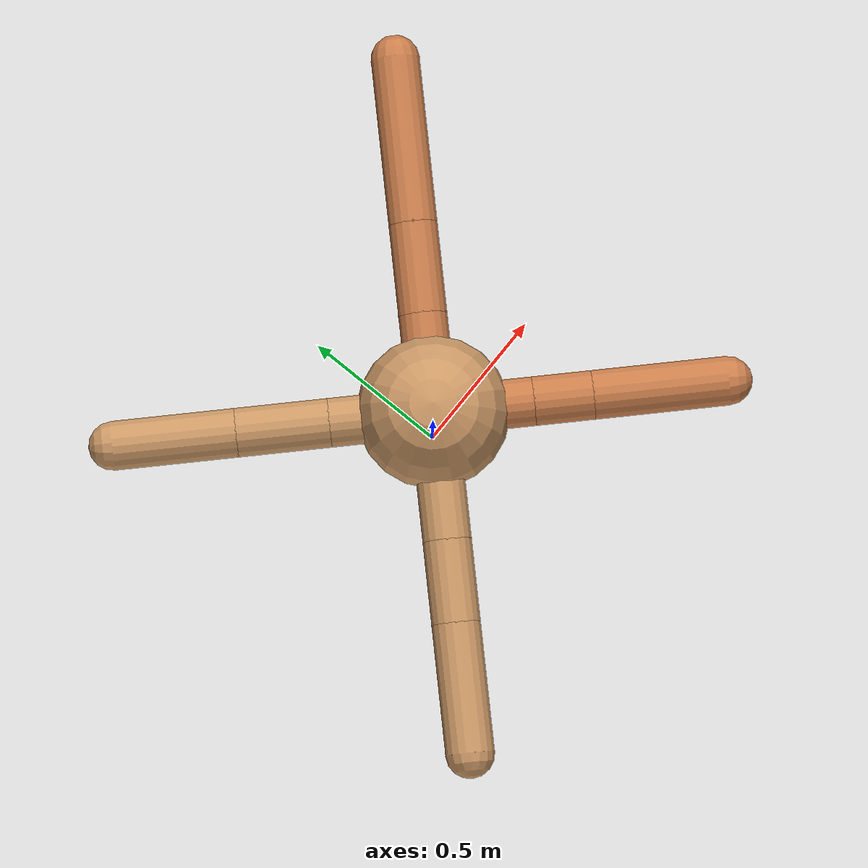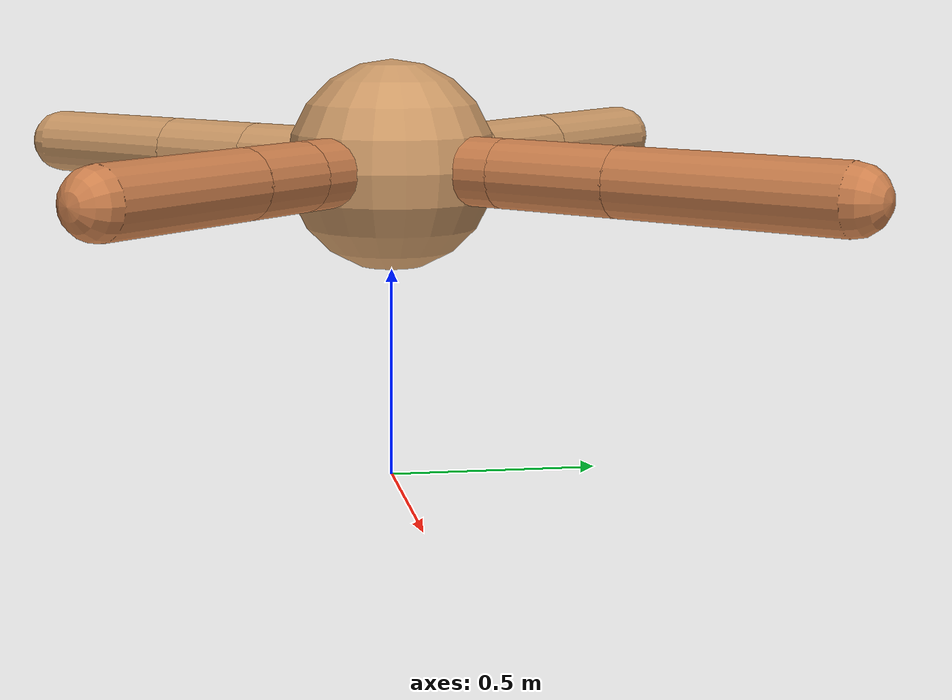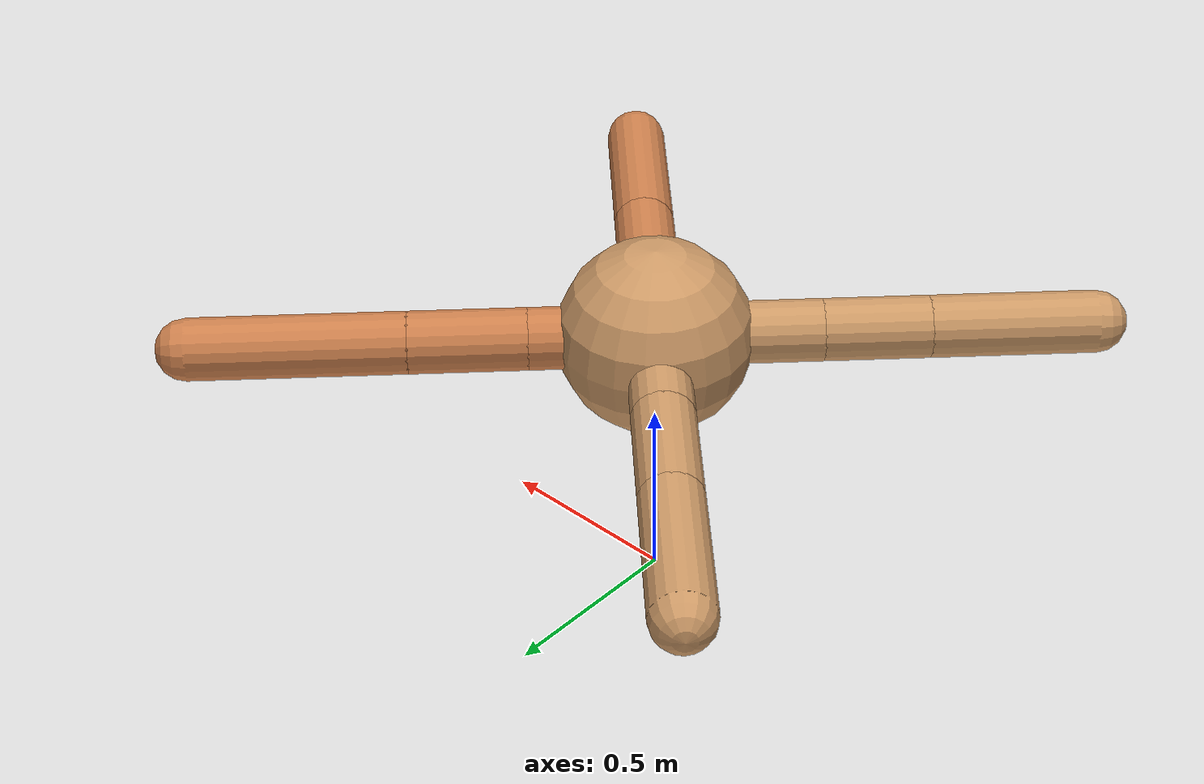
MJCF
<mujoco model="ant">
  <compiler angle="degree" coordinate="local" inertiafromgeom="true" />
  <option integrator="RK4" timestep="0.01" />
  <custom>
    <numeric data="0.0 0.0 0.55 1.0 0.0 0.0 0.0 0.0 1.0 0.0 -1.0 0.0 -1.0 0.0 1.0" name="init_qpos" />
  </custom>
  <default>
    <joint armature="1" damping="1" limited="true" />
    <geom conaffinity="0" condim="3" density="5.0" friction="1.5 0.1 0.1" margin="0.01" rgba="0.8 0.6 0.4 1" />
  </default>
  <worldbody>
    <body name="torso" pos="0 0 0.75">
      <geom name="torso_geom" pos="0 0 0" size="0.25" type="sphere" />

      <body name="front_left_leg" pos="0 0 0">
        <geom fromto="0.0 0.0 0.0 0.22522157472758 0.22522157472758 0.0" name="aux_1_geom" size="0.08" type="capsule" rgba=".8 .5 .3 1" />
        <body name="aux_1" pos="0.22522157472758 0.22522157472758 0.0">
          <joint axis="0 0 1" name="hip_1" pos="0.0 0.0 0.0" range="-40 40" type="hinge" />
          <geom fromto="0.0 0.0 0.0 0.21226783038134933 0.21226783038134933 0.0" name="left_leg_geom" size="0.08" type="capsule" rgba=".8 .5 .3 1" />
          <body pos="0.21226783038134933 0.21226783038134933 0.0" name="front_left_foot">
            <joint axis="-1 1 0" name="ankle_1" pos="0.0 0.0 0.0" range="30 100" type="hinge" />
            <geom fromto="0.0 0.0 0.0 0.3873876163597081 0.3873876163597081 0.0" name="left_ankle_geom" size="0.08" type="capsule" rgba=".8 .5 .3 1" />
          </body>
        </body>
      </body>
      <body name="front_right_leg" pos="0 0 0">
        <geom fromto="0.0 0.0 0.0 -0.2389827465895603 0.2389827465895603 0.0" name="aux_2_geom" size="0.08" type="capsule" />
        <body name="aux_2" pos="-0.2389827465895603 0.2389827465895603 0.0">
          <joint axis="0 0 1" name="hip_2" pos="0.0 0.0 0.0" range="-40 40" type="hinge" />
          <geom fromto="0.0 0.0 0.0 -0.2144613814801325 0.2144613814801325 0.0" name="right_leg_geom" size="0.08" type="capsule" />
          <body pos="-0.2144613814801325 0.2144613814801325 0.0" name="front_right_foot">
            <joint axis="1 1 0" name="ankle_2" pos="0.0 0.0 0.0" range="-100 -30" type="hinge" />
            <geom fromto="0.0 0.0 0.0 -0.2838149321208995 0.2838149321208995 0.0" name="right_ankle_geom" size="0.08" type="capsule" />
          </body>
        </body>
      </body>
      <body name="left_back_leg" pos="0 0 0">
        <geom fromto="0.0 0.0 0.0 -0.2981485461623297 -0.2981485461623297 0.0" name="aux_3_geom" size="0.08" type="capsule" />
        <body name="aux_3" pos="-0.2981485461623297 -0.2981485461623297 0.0">
          <joint axis="0 0 1" name="hip_3" pos="0.0 0.0 0.0" range="-40 40" type="hinge" />
          <geom fromto="0.0 0.0 0.0 -0.19084877477564305 -0.19084877477564305 0.0" name="back_leg_geom" size="0.08" type="capsule" />
          <body pos="-0.19084877477564305 -0.19084877477564305 0.0" name="left_back_foot">
            <joint axis="-1 1 0" name="ankle_3" pos="0.0 0.0 0.0" range="-100 -30" type="hinge" />
            <geom fromto="0.0 0.0 0.0 -0.2988506744533529 -0.2988506744533529 0.0" name="third_ankle_geom" size="0.08" type="capsule" />
          </body>
        </body>
      </body>
      <body name="right_back_leg" pos="0 0 0">
        <geom fromto="0.0 0.0 0.0 0.23108109651511122 -0.23108109651511122 0.0" name="aux_4_geom" size="0.08" type="capsule" rgba=".8 .5 .3 1" />
        <body name="aux_4" pos="0.23108109651511122 -0.23108109651511122 0.0">
          <joint axis="0 0 1" name="hip_4" pos="0.0 0.0 0.0" range="-40 40" type="hinge" />
          <geom fromto="0.0 0.0 0.0 0.1368554470837528 -0.1368554470837528 0.0" name="rightback_leg_geom" size="0.08" type="capsule" rgba=".8 .5 .3 1" />
          <body pos="0.1368554470837528 -0.1368554470837528 0.0" name="right_back_foot">
            <joint axis="1 1 0" name="ankle_4" pos="0.0 0.0 0.0" range="30 100" type="hinge" />
            <geom fromto="0.0 0.0 0.0 0.31190355676794956 -0.31190355676794956 0.0" name="fourth_ankle_geom" size="0.08" type="capsule" rgba=".8 .5 .3 1" />
          </body>
        </body>
      </body>
    </body>
  </worldbody>
  <actuator>
    <motor ctrllimited="true" ctrlrange="-1.0 1.0" joint="hip_4" gear="150" />
    <motor ctrllimited="true" ctrlrange="-1.0 1.0" joint="ankle_4" gear="150" />
    <motor ctrllimited="true" ctrlrange="-1.0 1.0" joint="hip_1" gear="150" />
    <motor ctrllimited="true" ctrlrange="-1.0 1.0" joint="ankle_1" gear="150" />
    <motor ctrllimited="true" ctrlrange="-1.0 1.0" joint="hip_2" gear="150" />
    <motor ctrllimited="true" ctrlrange="-1.0 1.0" joint="ankle_2" gear="150" />
    <motor ctrllimited="true" ctrlrange="-1.0 1.0" joint="hip_3" gear="150" />
    <motor ctrllimited="true" ctrlrange="-1.0 1.0" joint="ankle_3" gear="150" />
  </actuator>
</mujoco>
